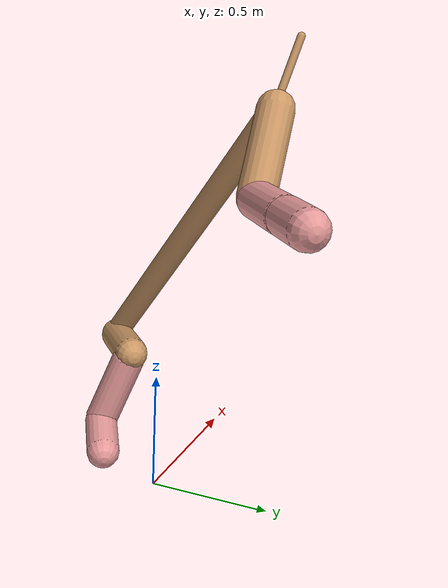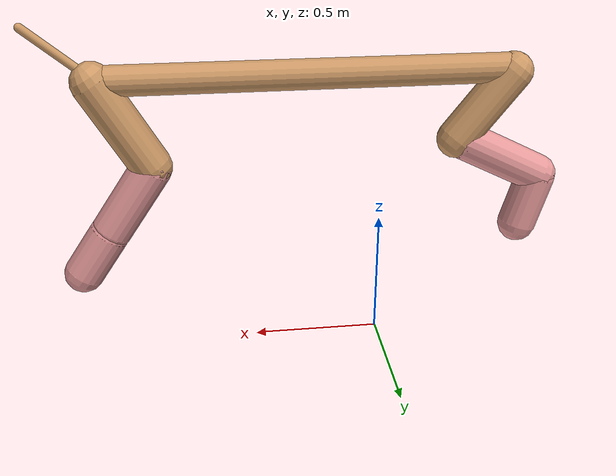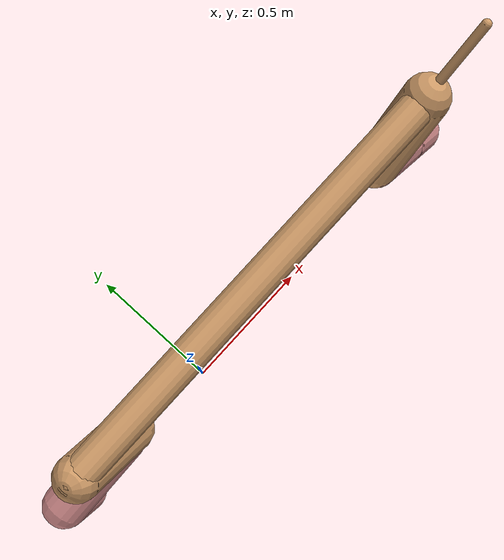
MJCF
<mujoco model="cheetah">
  <compiler angle="radian" coordinate="local" inertiafromgeom="true" settotalmass="14" />
  <default>
    <joint armature=".1" damping=".01" limited="true" solimplimit="0 .8 .03" solreflimit=".02 1" stiffness="8" />
    <geom conaffinity="0" condim="3" contype="1" friction="0.8 .1 .1" rgba="0.8 0.6 .4 1" solimp="0.0 0.8 0.01" solref="0.02 1" />
    <motor ctrllimited="true" ctrlrange="-1 1" />
  </default>
  <size nstack="300000" nuser_geom="1" />
  <option gravity="0 0 -9.81" timestep="0.01" />
  <worldbody>
    <body name="torso" pos="0.0 0.0 1.0970020293406892">
      <joint armature="0" axis="1 0 0" damping="0" limited="false" name="ignorex" pos="0 0 0" stiffness="0" type="slide" />
      <joint armature="0" axis="0 0 1" damping="0" limited="false" name="ignorez" pos="0 0 0" stiffness="0" type="slide" />
      <joint armature="0" axis="0 1 0" damping="0" limited="false" name="ignorey" pos="0 0 0" stiffness="0" type="hinge" />
      <geom fromto="-0.5 0.0 0.0 1.0608270387769743 0.0 0.0" name="torso" size="0.056398422942830366" type="capsule" />
      <geom axisangle="0 1 0 .87" name="head" pos="1.1608270387769744 0.0 0.1" size="0.01602764965162918 0.15" type="capsule" />

      <body name="bthigh" pos="-.5 0 0">
        <joint axis="0 1 0" damping="6" name="bthigh" pos="0 0 0" range="-.52 1.05" stiffness="240" type="hinge" />
        <geom axisangle="0 1 0 -3.8" name="bthigh" pos="0.11118668033068989 0.0 -0.14454268442989684" size="0.0752522120625279 0.1633475199209214" type="capsule" />
        <body name="bshin" pos="0.18237336066137977 0.0 -0.2790853688597937">
          <joint axis="0 1 0" damping="4.5" name="bshin" pos="0 0 0" range="-.785 .785" stiffness="180" type="hinge" />
          <geom axisangle="0 1 0 -2.03" name="bshin" pos="-0.15697640072898422 0.0 -0.07848820036449211" rgba="0.9 0.6 0.6 1" size="0.0752522120625279 0.16898019302164283" type="capsule" />
          <body name="bfoot" pos="-0.31395280145796844 0.0 -0.15697640072898422">
            <joint axis="0 1 0" damping="3" name="bfoot" pos="0 0 0" range="-.4 .785" stiffness="120" type="hinge" />
            <geom axisangle="0 1 0 -.27" name="bfoot" pos="0.033514392020483626 0.0 -0.10836320086623041" rgba="0.9 0.6 0.6 1" size="0.0752522120625279 0.10589425429356285" type="capsule" />
            <inertial mass="10" />
          </body>
        </body>
      </body>
      <body name="fthigh" pos="1.0608270387769743 0.0 0.0">
        <joint axis="0 1 0" damping="4.5" name="fthigh" pos="0 0 0" range="-1.5 0.8" stiffness="180" type="hinge" />
        <geom axisangle="0 1 0 .52" name="fthigh" pos="-0.09782952930402913 0.0 -0.1677077645211928" size="0.07724317787913267 0.18823145387271095" type="capsule" />
        <body name="fshin" pos="-0.19565905860805827 0.0 -0.3354155290423856">
          <joint axis="0 1 0" damping="3" name="fshin" pos="0 0 0" range="-1.2 1.1" stiffness="120" type="hinge" />
          <geom axisangle="0 1 0 -.6" name="fshin" pos="0.09077273999144092 0.0 -0.12568533229584128" rgba="0.9 0.6 0.6 1" size="0.07724317787913267 0.15001905346246136" type="capsule" />
          <body name="ffoot" pos="0.18154547998288184 0.0 -0.25137066459168256">
            <joint axis="0 1 0" damping="1.5" name="ffoot" pos="0 0 0" range="-3.1 -0.3" stiffness="60" type="hinge" />
            <geom axisangle="0 1 0 -.6" name="ffoot" pos="0.06071938313734199 0.0 -0.09445237376919866" rgba="0.9 0.6 0.6 1" size="0.07724317787913267 0.09906918624879525" type="capsule" />
            <inertial mass="10" />
          </body>
        </body>
      </body>
    </body>
  </worldbody>
  <actuator>
    <motor gear="120" joint="bthigh" name="bthigh" />
    <motor gear="90" joint="bshin" name="bshin" />
    <motor gear="60" joint="bfoot" name="bfoot" />
    <motor gear="120" joint="fthigh" name="fthigh" />
    <motor gear="60" joint="fshin" name="fshin" />
    <motor gear="30" joint="ffoot" name="ffoot" />
  </actuator>
</mujoco>
